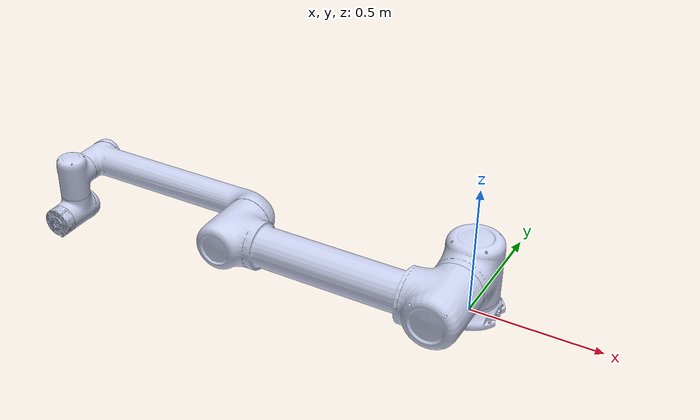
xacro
<robot
  name="S30" xmlns:xacro="http://www.ros.org/wiki/xacro">

  <xacro:include filename="$(find elfin_description)/urdf/materials.xacro" />

  <xacro:include filename="$(find elfin_description)/urdf/elfin_robot.gazebo" />

  <xacro:include filename="$(find elfin_description)/urdf/elfin_transmission.xacro" />

  <xacro:property name="PI" value="3.1415926535897931"/>

  <xacro:property name="density" value="3.09"/>

  <link name="world"/>

  <joint name="world_base" type="fixed">
    <origin
      xyz="0 0 0"
      rpy="0 0 0" />
    <parent
      link="world" />
    <child
      link="elfin_base_link" />
  </joint>

  <link name="elfin_base_link"/>

  <joint name="elfin_base_joint" type="fixed">
    <origin
      xyz="0 0 0"
      rpy="0 0 0" />
    <parent
      link="elfin_base_link" />
    <child
      link="elfin_base" />
  </joint>

  <link
    name="elfin_base">
    <inertial>
      <origin
        xyz="-0.00182570523768139 -4.15146733297469E-05 0.0344447988952151"
        rpy="0 0 0" />
      <mass
        value="2.81113188893986" />
      <inertia
        ixx="0.0106814606046092"
        ixy="8.24613148580511E-05"
        ixz="-9.17576418246381E-05"
        iyy="0.0102058983037703"
        iyz="-9.19372860361224E-07"
        izz="0.0185267405704515" />
    </inertial>
    <visual>
      <origin
        xyz="0 0 0"
        rpy="0 0 0" />
      <geometry>
        <mesh
          filename="package://elfin_description/meshes/S30/elfin_base.STL" />
      </geometry>
      <material
        name="">
        <color
          rgba="0.792156862745098 0.819607843137255 0.933333333333333 1" />
      </material>
    </visual>
    <collision>
      <origin
        xyz="0 0 0"
        rpy="0 0 0" />
      <geometry>
        <mesh
          filename="package://elfin_description/meshes/S30/elfin_base.STL" />
      </geometry>
    </collision>
  </link>
  <link
    name="elfin_link1">
    <inertial>
      <origin
        xyz="-1.19748154212398E-05 -0.025066327748896 0.00568661483046348"
        rpy="0 0 0" />
      <mass
        value="10.447232084145" />
      <inertia
        ixx="0.0912243189629746"
        ixy="-2.21153274149085E-06"
        ixz="-1.19473411962791E-05"
        iyy="0.0749178450721119"
        iyz="-0.0016606260720329"
        izz="0.0775388557207402" />
    </inertial>
    <visual>
      <origin
        xyz="0 0 0"
        rpy="0 0 0" />
      <geometry>
        <mesh
          filename="package://elfin_description/meshes/S30/elfin_link1.STL" />
      </geometry>
      <material
        name="">
        <color
          rgba="0.792156862745098 0.819607843137255 0.933333333333333 1" />
      </material>
    </visual>
    <collision>
      <origin
        xyz="0 0 0"
        rpy="0 0 0" />
      <geometry>
        <mesh
          filename="package://elfin_description/meshes/S30/elfin_link1.STL" />
      </geometry>
    </collision>
  </link>
  <joint
    name="elfin_joint1"
    type="revolute">
    <origin
      xyz="0 0 0.1857"
      rpy="0 0 0" />
    <parent
      link="elfin_base" />
    <child
      link="elfin_link1" />
    <axis
      xyz="0 0 1" />
    <limit
      lower="-6.28"
      upper="6.28"
      effort="200"
      velocity="1.57" />
    <dynamics damping="10.0" friction="10.0"/>
  </joint>
  <link
    name="elfin_link2">
    <inertial>
      <origin
        xyz="-0.390281778130182 1.70080852818222E-07 0.000374984168995895"
        rpy="0 0 0" />
      <mass
        value="28.3325147390428" />
      <inertia
        ixx="0.142928193742903"
        ixy="1.82656227170385E-05"
        ixz="-0.101092329395707"
        iyy="2.89798090049891"
        iyz="7.70139124118338E-06"
        izz="2.87982580396794" />
    </inertial>
    <visual>
      <origin
        xyz="0 0 0"
        rpy="0 0 0" />
      <geometry>
        <mesh
          filename="package://elfin_description/meshes/S30/elfin_link2.STL" />
      </geometry>
      <material
        name="">
        <color
          rgba="0.792156862745098 0.819607843137255 0.933333333333333 1" />
      </material>
    </visual>
    <collision>
      <origin
        xyz="0 0 0"
        rpy="0 0 0" />
      <geometry>
        <mesh
          filename="package://elfin_description/meshes/S30/elfin_link2.STL" />
      </geometry>
    </collision>
  </link>
  <joint
    name="elfin_joint2"
    type="revolute">
    <origin
      xyz="0 -0.264 0"
      rpy="1.5708 0 0" />
    <parent
      link="elfin_link1" />
    <child
      link="elfin_link2" />
    <axis
      xyz="0 0 1" />
     <limit
      lower="-3.3158"
      upper="0.1745"
      effort="350"
      velocity="1.57" />
    <dynamics damping="40.0" friction="40.0"/>
  </joint>
  <link
    name="elfin_link3">
    <inertial>
      <origin
        xyz="0.388697059025029 -3.03083941551596E-05 0.00753514415464786"
        rpy="0 0 0" />
      <mass
        value="11.4981269171998" />
      <inertia
        ixx="0.0274487474095341"
        ixy="-0.000122685600120488"
        ixz="0.0260951860371648"
        iyy="0.932072057541576"
        iyz="-5.08279740235596E-06"
        izz="0.929252365205332" />
    </inertial>
    <visual>
      <origin
        xyz="0 0 0"
        rpy="0 0 0" />
      <geometry>
        <mesh
          filename="package://elfin_description/meshes/S30/elfin_link3.STL" />
      </geometry>
      <material
        name="">
        <color
          rgba="0.792156862745098 0.819607843137255 0.933333333333333 1" />
      </material>
    </visual>
    <collision>
      <origin
        xyz="0 0 0"
        rpy="0 0 0" />
      <geometry>
        <mesh
          filename="package://elfin_description/meshes/S30/elfin_link3.STL" />
      </geometry>
    </collision>
  </link>
  <joint
    name="elfin_joint3"
    type="revolute">
    <origin
      xyz="-0.85 0 -0.2065"
      rpy="0 0 3.1416" />
    <parent
      link="elfin_link2" />
    <child
      link="elfin_link3" />
    <axis
      xyz="0 0 1" />
    <limit
      lower="-2.9319"
      upper="2.9319"
      effort="200"
      velocity="1.57" />
    <dynamics damping="10.0" friction="10.0"/>
  </joint>
  <link
    name="elfin_link4">
    <inertial>
      <origin
        xyz="3.99793541383531E-06 0.00462831578182413 0.152550570700406"
        rpy="0 0 0" />
      <mass
        value="2.06095840150134" />
      <inertia
        ixx="0.00673919253385029"
        ixy="2.2259796549234E-07"
        ixz="1.93396947500492E-08"
        iyy="0.00414425855023245"
        iyz="-4.45577078923009E-05"
        izz="0.00637685481025727" />
    </inertial>
    <visual>
      <origin
        xyz="0 0 0"
        rpy="0 0 0" />
      <geometry>
        <mesh
          filename="package://elfin_description/meshes/S30/elfin_link4.STL" />
      </geometry>
      <material
        name="">
        <color
          rgba="0.792156862745098 0.819607843137255 0.933333333333333 1" />
      </material>
    </visual>
    <collision>
      <origin
        xyz="0 0 0"
        rpy="0 0 0" />
      <geometry>
        <mesh
          filename="package://elfin_description/meshes/S30/elfin_link4.STL" />
      </geometry>
    </collision>
  </link>
  <joint
    name="elfin_joint4"
    type="revolute">
    <origin
      xyz="0.7915 0 0"
      rpy="0 0 0" />
    <parent
      link="elfin_link3" />
    <child
      link="elfin_link4" />
    <axis
      xyz="0 0 1" />
   <limit
      lower="-6.28"
      upper="6.28"
      effort="104"
      velocity="1.57" />
    <dynamics damping="10.0" friction="10.0"/>
  </joint>
  <link
    name="elfin_link5">
    <inertial>
      <origin
        xyz="-3.99793508565338E-06 -0.00462831578639919 0.152550570700468"
        rpy="0 0 0" />
      <mass
        value="2.06095840135761" />
      <inertia
        ixx="0.00673919253313528"
        ixy="2.22597914077182E-07"
        ixz="-1.93396939282409E-08"
        iyy="0.00414425855010988"
        iyz="4.4557707879191E-05"
        izz="0.00637685480953177" />
    </inertial>
    <visual>
      <origin
        xyz="0 0 0"
        rpy="0 0 0" />
      <geometry>
        <mesh
          filename="package://elfin_description/meshes/S30/elfin_link5.STL" />
      </geometry>
      <material
        name="">
        <color
          rgba="0.792156862745098 0.819607843137255 0.933333333333333 1" />
      </material>
    </visual>
    <collision>
      <origin
        xyz="0 0 0"
        rpy="0 0 0" />
      <geometry>
        <mesh
          filename="package://elfin_description/meshes/S30/elfin_link5.STL" />
      </geometry>
    </collision>
  </link>
  <joint
    name="elfin_joint5"
    type="revolute">
    <origin
      xyz="0 0 0.1585"
      rpy="-1.5708 0 0" />
    <parent
      link="elfin_link4" />
    <child
      link="elfin_link5" />
    <axis
      xyz="0 0 1" />
     <limit
      lower="-6.28"
      upper="6.28"
      effort="34"
      velocity="1.57" />
    <dynamics damping="10.0" friction="10.0"/>
  </joint>
  <link
    name="elfin_link6">
    <inertial>
      <origin
        xyz="1.33454427726498E-05 0.000240652222660478 0.107931554093797"
        rpy="0 0 0" />
      <mass
        value="0.466589781310633" />
      <inertia
        ixx="0.000479981834705425"
        ixy="-3.39477403898819E-09"
        ixz="-5.92074041906686E-08"
        iyy="0.0004714515831053"
        iyz="5.19083846385865E-07"
        izz="0.000805167898495402" />
    </inertial>
    <visual>
      <origin
        xyz="0 0 0"
        rpy="0 0 0" />
      <geometry>
        <mesh
          filename="package://elfin_description/meshes/S30/elfin_link6.STL" />
      </geometry>
      <material
        name="">
        <color
          rgba="0.792156862745098 0.819607843137255 0.933333333333333 1" />
      </material>
    </visual>
    <collision>
      <origin
        xyz="0 0 0"
        rpy="0 0 0" />
      <geometry>
        <mesh
          filename="package://elfin_description/meshes/S30/elfin_link6.STL" />
      </geometry>
    </collision>
  </link>
  <joint
    name="elfin_joint6"
    type="revolute">
    <origin
      xyz="0 0 0.1585"
      rpy="1.5708 0 0" />
    <parent
      link="elfin_link5" />
    <child
      link="elfin_link6" />
    <axis
      xyz="0 0 1" />
   <limit
      lower="-6.28"
      upper="6.28"
      effort="34"
      velocity="1.57" />
    <dynamics damping="10.0" friction="10.0"/>
  </joint>
  <link
    name="elfin_end_link">
    <inertial>
      <origin
        xyz="-1.33454427728719E-05 -0.000240652222659805 -0.0265684459062023"
        rpy="0 0 0" />
      <mass
        value="0.466589781310633" />
      <inertia
        ixx="0.000479981834705425"
        ixy="-3.39477403898796E-09"
        ixz="5.92074041906685E-08"
        iyy="0.0004714515831053"
        iyz="-5.19083846385858E-07"
        izz="0.000805167898495402" />
    </inertial>
    <visual>
      <origin
        xyz="0 0 0"
        rpy="0 0 0" />
      <geometry>
        <mesh
          filename="package://elfin_description/meshes/S30/elfin_end_link.STL" />
      </geometry>
      <material
        name="">
        <color
          rgba="0.792156862745098 0.819607843137255 0.933333333333333 1" />
      </material>
    </visual>
    <collision>
      <origin
        xyz="0 0 0"
        rpy="0 0 0" />
      <geometry>
        <mesh
          filename="package://elfin_description/meshes/S30/elfin_end_link.STL" />
      </geometry>
    </collision>
  </link>
  <joint
    name="elfin_end_joint"
    type="fixed">
    <origin
      xyz="0 0 0.1345"
      rpy="0 0 3.1416" />
    <parent
      link="elfin_link6" />
    <child
      link="elfin_end_link" />
    <axis
      xyz="0 0 0" />
  </joint>
</robot>
